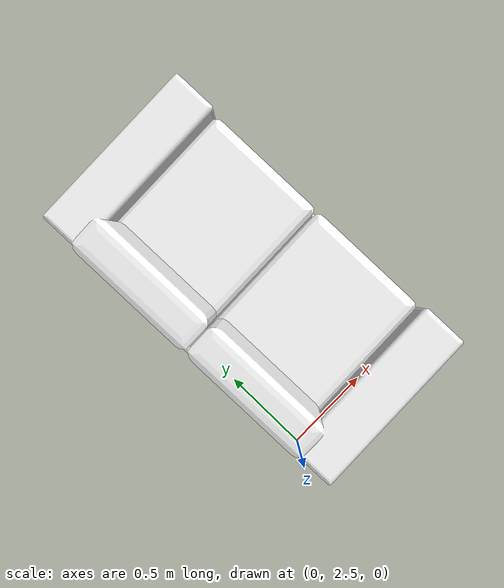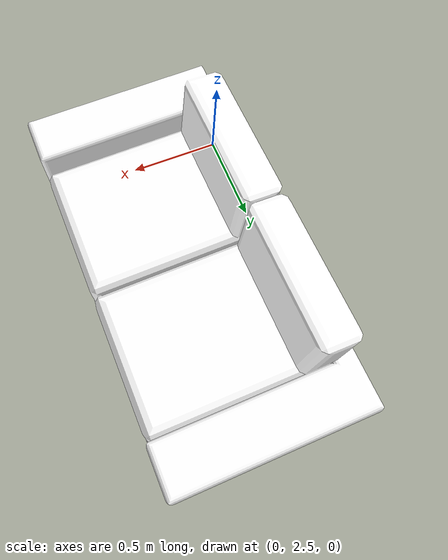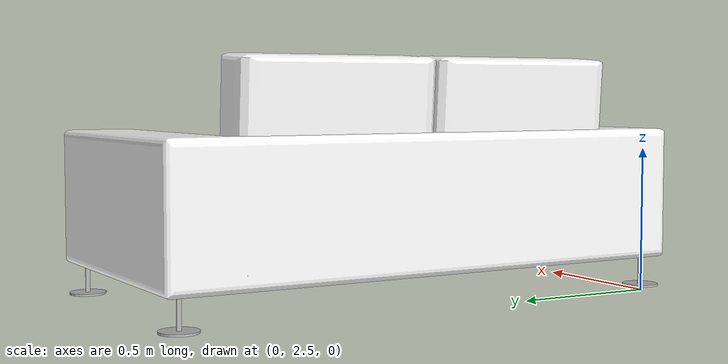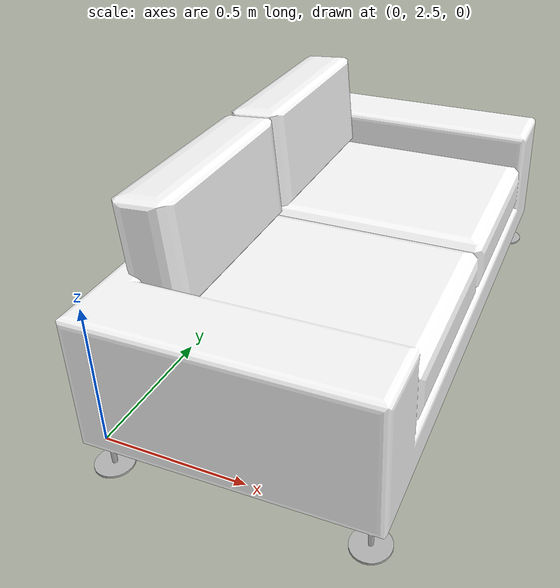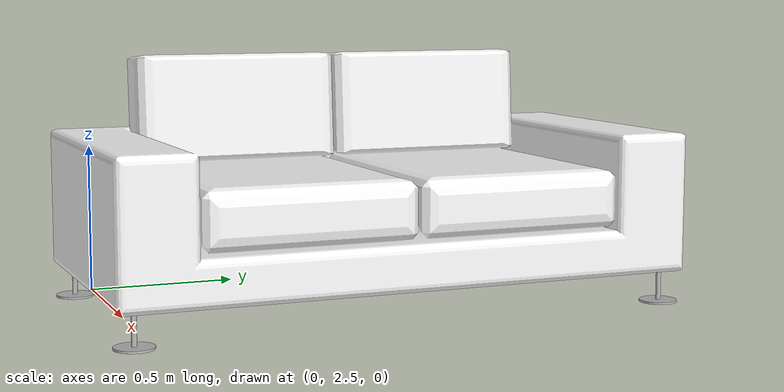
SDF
<?xml version="1.0" ?>
<sdf version="1.4">
  <model name="couch2">
    <link name="link">
     <collision name="collision">
        <pose>0.9832620 2.380100 0 0 1.590720</pose>
        <geometry>
          <mesh>
            <uri>model://couch2/meshes/couch2.dae</uri>
          </mesh>
        </geometry>
      </collision>
      <collision name="collision">
        <pose>0.983262 2.380100 0 0 0 1.590720</pose>
        <geometry>
          <mesh>
            <uri>model://couch2/meshes/couch2.dae</uri>
          </mesh>
        </geometry>
      </collision>
      <visual name="visual">
        <pose>0.983262 2.380100 0 0 0 1.590720</pose>
        <geometry>
          <mesh>
            <uri>model://couch2/meshes/couch2.dae</uri>
          </mesh>
        </geometry>
      </visual>
    </link>
    <static>1</static>
  </model>
</sdf>
